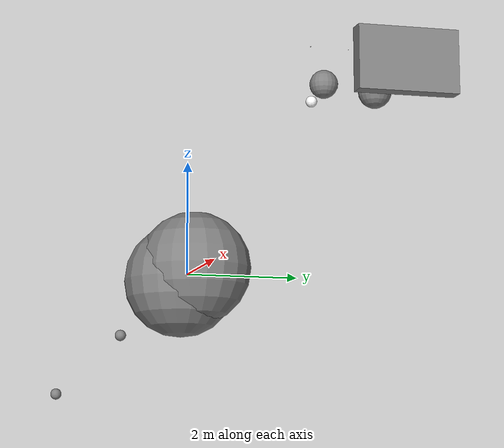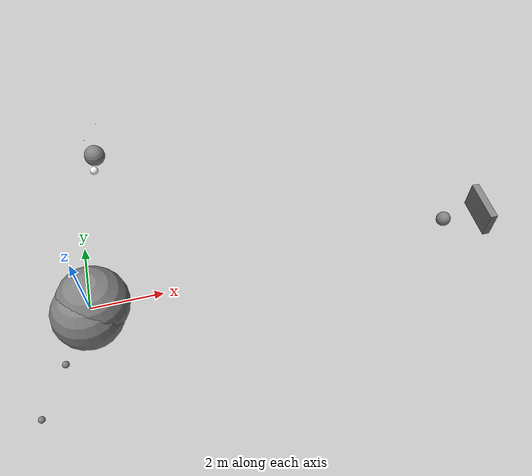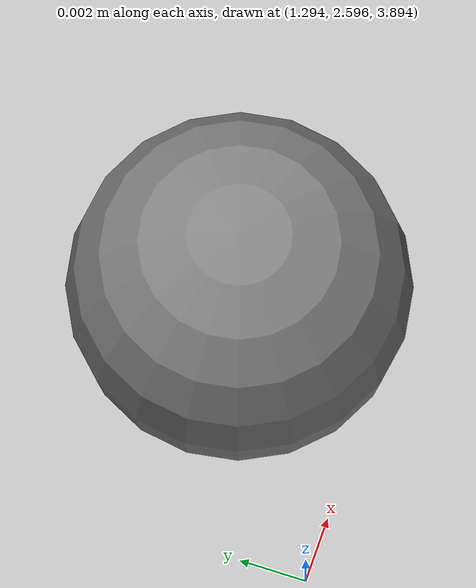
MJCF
<mujoco model="sensor">
  <compiler meshdir="F:/--CodeRepo/--CodeRepo/Research/___Mujoco/mujoco/mujoco/icse27/mujoco_rl_fuzz_2.0/.cache/repos/mjx/mjx/mujoco/mjx/test_data/sensor" texturedir="F:/--CodeRepo/--CodeRepo/Research/___Mujoco/mujoco/mujoco/icse27/mujoco_rl_fuzz_2.0/.cache/repos/mjx/mjx/mujoco/mjx/test_data/sensor" assetdir="F:/--CodeRepo/--CodeRepo/Research/___Mujoco/mujoco/mujoco/icse27/mujoco_rl_fuzz_2.0/.cache/repos/mjx/mjx/mujoco/mjx/test_data/sensor"/><asset>
    <material name="material"/>
  </asset>
  <worldbody>
    <!-- tree 0 -->
    <body name="body0" pos="1 2 3">
      <joint name="hinge0" type="hinge" axis="1 0 0"/>
      <geom size="0.1" material="material"/>
      <site name="site_rangefinder0" pos="-1e-3 0 0.2"/>
      <site name="site_rangefinder1" pos="-1e-3 0 0.175"/>
      <site name="site0" pos=".1 .2 .3"/>
      <body name="body1" pos="0.1 0.2 0.3">
        <joint name="hinge1" type="hinge" axis="0 1 0"/>
        <geom size="0.25"/>
        <site name="site1" pos=".2 .4 .6"/>
      </body>
    </body>

    <!-- body 2 -->
    <body name="body2" pos=".1 .1 .1">
      <joint name="ballquat2" type="ball" pos="0.1 0.1 0.1"/>
      <geom name="geom2" size="1"/>
    </body>

    <!-- body 3 -->
    <body name="body3" pos="-.1 -.1 -.1">
      <joint name="ballquat3" type="ball" pos="0.1 0.2 0.3"/>
      <geom size="1"/>
      <site name="site3"/>
    </body>

    <!-- bodies for camera projection -->
    <body pos="11.1 0 1">
      <geom type="box" size=".1 .6 .375"/>
      <site name="frontorigin" pos="-.1  .6  .375"/>
      <site name="frontcenter" pos="-.1 0 0"/>
    </body>
    <body pos="10 0 0">
      <joint axis="0 0 1" range="-180 180" limited="false"/>
      <geom type="sphere" size=".2" pos="0 0 0.9"/>
      <camera pos="0 0 1" xyaxes="0 -1 0 0 0 1" fovy="41.11209" resolution="1920 1200" name="fixedcamera"/>
    </body>

    <!-- body for rangefinder -->
    <body name="body_rangefinder" pos="1 2 4">
      <geom size="0.01" material="material"/>
    </body>

    <!-- bodies for force + torque sensors -->
    <body pos="-1 -1 -1">
      <joint type="hinge" axis="1 0 0"/>
      <joint type="hinge" axis="0 1 0"/>
      <joint type="hinge" axis="0 0 1"/>
      <site name="site_force"/>
      <geom size="0.1"/>
    </body>
    <body pos="-2 -2 -2">
      <joint type="slide" axis="1 0 0"/>
      <joint type="slide" axis="0 1 0"/>
      <joint type="slide" axis="0 0 1"/>
      <site name="site_torque"/>
      <geom size="0.1"/>
    </body>
  </worldbody>

  <actuator>
    <motor name="motor0" joint="hinge0" ctrlrange="-1 1" gear="10" ctrllimited="true"/>
    <motor name="motor1" joint="hinge1" ctrlrange="-1 1" gear="10" ctrllimited="true"/>
  </actuator>

  <sensor>
    <torque site="site_torque"/>
    <magnetometer name="magnetometer0" site="site0"/>
    <velocimeter name="velocimeter0" site="site0"/>
    <velocimeter name="velocimeter0cutoff" site="site0" cutoff="3e-4"/>
    <gyro name="gyro0" site="site0"/>
    <gyro name="gyro0cutoff" site="site0" cutoff="2e-3"/>
    <rangefinder name="rangefinder0" site="site_rangefinder0"/>
    <accelerometer name="accelerometer1" site="site1"/>
    <force site="site_force"/>
    <jointpos name="jointpos0" joint="hinge0"/>
    <jointpos name="jointpos0cutoff" joint="hinge0" cutoff="1e-4"/>
    <jointvel name="jointvel0" joint="hinge0"/>
    <jointvel name="jointvel0cutoff" joint="hinge0" cutoff="1e-3"/>
    <actuatorfrc name="actuatorfrc0" actuator="motor0"/>
    <framelinvel name="framelinvel3" objtype="site" objname="site3"/>
    <framelinvel name="framelinvel3ref" objtype="site" objname="site3" reftype="body" refname="body2"/>
    <subtreelinvel name="subtreelinvel0" body="body0"/>
    <actuatorpos name="actuatorpos0" actuator="motor0"/>
    <actuatorvel name="actuatorvel0" actuator="motor0"/>
    <ballquat name="ballquat2" joint="ballquat2"/>
    <ballangvel name="ballangvel2" joint="ballquat2"/>
    <framexaxis name="framexaxis0" objtype="site" objname="site0"/>
    <jointactuatorfrc name="jointactfrc1" joint="hinge1"/>
    <framezaxis name="framezaxis0" objtype="site" objname="site0"/>
    <framequat name="framequat3" objtype="site" objname="site3"/>
    <frameyaxis name="frameyaxis0" objtype="site" objname="site0"/>
    <framepos name="framepos0" objtype="site" objname="site0"/>
    <velocimeter name="velocimeter1" site="site1"/>
    <gyro name="gyro1" site="site1"/>
    <frameangvel name="frameangvel3" objtype="site" objname="site3"/>
    <frameangvel name="frameangvel3ref" objtype="site" objname="site3" reftype="body" refname="body2"/>
    <frameangvel name="frameangvel3cutoff" objtype="site" objname="site3" cutoff="1e-3"/>
    <actuatorfrc name="actuatorfrc1" actuator="motor1"/>
    <subtreeangmom name="subtreeangmom0" body="body0"/>
    <subtreecom name="subtreecom0" body="body0"/>
    <camprojection site="frontorigin" camera="fixedcamera"/>
    <magnetometer name="magnetometer1" site="site1"/>
    <jointpos name="jointpos1" joint="hinge1"/>
    <framelinacc name="framelinacc0" objtype="site" objname="site0"/>
    <frameangacc name="frameangacc0" objtype="site" objname="site0"/>
    <jointvel name="jointvel1" joint="hinge1"/>
    <actuatorpos name="actuatorpos1" actuator="motor1"/>
    <subtreelinvel name="subtreelinvel1" body="body1"/>
    <actuatorvel name="actuatorvel1" actuator="motor1"/>
    <framepos name="framepos1" objtype="site" objname="site1"/>
    <jointactuatorfrc name="jointactfrc0" joint="hinge0"/>
    <subtreeangmom name="subtreeangmom1" body="body1"/>
    <framezaxis name="framezaxis1" objtype="site" objname="site1"/>
    <framexaxis name="framexaxis1" objtype="site" objname="site1"/>
    <ballquat name="ballquat3" joint="ballquat3"/>
    <camprojection site="frontcenter" camera="fixedcamera"/>
    <ballangvel name="ballangvel3" joint="ballquat3"/>
    <frameangvel name="frameangvel0" objtype="site" objname="site0"/>
    <frameangvel name="frameangvel0ref" objtype="site" objname="site0" reftype="site" refname="site3"/>
    <frameyaxis name="frameyaxis1" objtype="site" objname="site1"/>
    <framequat name="framequat0" objtype="site" objname="site0"/>
    <framelinacc name="framelinacc1" objtype="site" objname="site1"/>
    <rangefinder name="rangefinder1" site="site_rangefinder1"/>
    <subtreecom name="subtreecom1" body="body1"/>
    <accelerometer name="accelerometer0" site="site0"/>
    <frameangacc name="frameangacc1" objtype="site" objname="site1"/>
    <framelinvel name="framelinvel0" objtype="site" objname="site0"/>
    <framelinvel name="framelinvel0ref" objtype="site" objname="site0" reftype="geom" refname="geom2"/>
    <framelinvel name="framelinvel0cutoff" objtype="site" objname="site0" cutoff="3e-4"/>
    <clock/>
  </sensor>
</mujoco>
